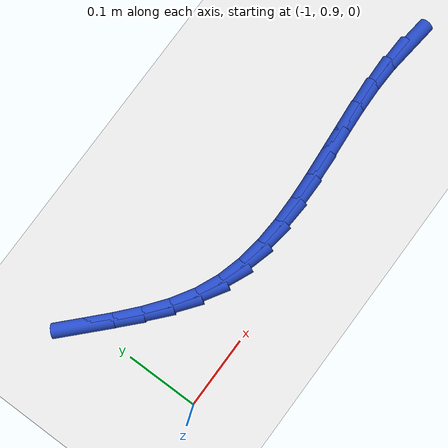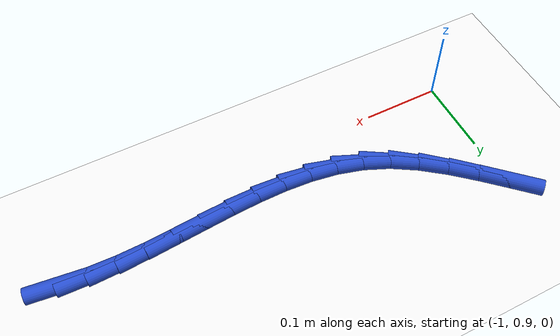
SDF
<sdf version="1.6">
 <world name="default">
  <model name="ground_plane">
   <static>1</static>
   <link name="link">
    <collision name="collision">
     <geometry><plane><normal>0 0 1</normal><size>100 100</size></plane></geometry>
     <surface><friction><ode><mu>100</mu><mu2>50</mu2></ode></friction></surface>
    </collision>
    <visual name="visual">
     <cast_shadows>0</cast_shadows>
     <geometry><plane><normal>0 0 1</normal><size>100 100</size></plane></geometry>
     <material>
      <script><uri>file://media/materials/scripts/gazebo.material</uri><name>Gazebo/WhiteGlow</name></script>
     </material>
    </visual>
   </link>
  </model>
  <model name="line">
   <link name="link_32">
    <pose>-0.4661012301306202 0.9530274893304471 0.01 0 1.57 -0.11700415218146078</pose>
    <collision name="collision">
     <geometry><cylinder><radius>0.01</radius><length>0.08</length></cylinder></geometry>
    </collision>
    <visual name="visual">
     <material>
      <script><name>Gazebo/Blue</name><uri>file://media/materials/scripts/gazebo.material</uri></script>
     </material>
     <geometry><cylinder><radius>0.01</radius><length>0.08</length></cylinder></geometry>
    </visual>
   </link>
   <link name="link_33">
    <pose>-0.4998594675953271 0.956995466998728 0.01 0 1.57 -0.031951493490827425</pose>
    <collision name="collision">
     <geometry><cylinder><radius>0.01</radius><length>0.08</length></cylinder></geometry>
    </collision>
    <visual name="visual">
     <material>
      <script><name>Gazebo/Blue</name><uri>file://media/materials/scripts/gazebo.material</uri></script>
     </material>
     <geometry><cylinder><radius>0.01</radius><length>0.08</length></cylinder></geometry>
    </visual>
   </link>
   <link name="link_34">
    <pose>-0.5345262199089968 0.9581034985976825 0.01 0 1.57 0.028199047168971918</pose>
    <collision name="collision">
     <geometry><cylinder><radius>0.01</radius><length>0.08</length></cylinder></geometry>
    </collision>
    <visual name="visual">
     <material>
      <script><name>Gazebo/Blue</name><uri>file://media/materials/scripts/gazebo.material</uri></script>
     </material>
     <geometry><cylinder><radius>0.01</radius><length>0.08</length></cylinder></geometry>
    </visual>
   </link>
   <link name="link_35">
    <pose>-0.5698891599321906 0.9571060329795994 0.01 0 1.57 0.06542180699364927</pose>
    <collision name="collision">
     <geometry><cylinder><radius>0.01</radius><length>0.08</length></cylinder></geometry>
    </collision>
    <visual name="visual">
     <material>
      <script><name>Gazebo/Blue</name><uri>file://media/materials/scripts/gazebo.material</uri></script>
     </material>
     <geometry><cylinder><radius>0.01</radius><length>0.08</length></cylinder></geometry>
    </visual>
   </link>
   <link name="link_36">
    <pose>-0.6057359605254691 0.9547575189967683 0.01 0 1.57 0.0813606788135846</pose>
    <collision name="collision">
     <geometry><cylinder><radius>0.01</radius><length>0.08</length></cylinder></geometry>
    </collision>
    <visual name="visual">
     <material>
      <script><name>Gazebo/Blue</name><uri>file://media/materials/scripts/gazebo.material</uri></script>
     </material>
     <geometry><cylinder><radius>0.01</radius><length>0.08</length></cylinder></geometry>
    </visual>
   </link>
   <link name="link_37">
    <pose>-0.6418542945493942 0.9518124055014784 0.01 0 1.57 0.07689214971873724</pose>
    <collision name="collision">
     <geometry><cylinder><radius>0.01</radius><length>0.08</length></cylinder></geometry>
    </collision>
    <visual name="visual">
     <material>
      <script><name>Gazebo/Blue</name><uri>file://media/materials/scripts/gazebo.material</uri></script>
     </material>
     <geometry><cylinder><radius>0.01</radius><length>0.08</length></cylinder></geometry>
    </visual>
   </link>
   <link name="link_38">
    <pose>-0.6780318348645269 0.9490251413460182 0.01 0 1.57 0.05200016284586164</pose>
    <collision name="collision">
     <geometry><cylinder><radius>0.01</radius><length>0.08</length></cylinder></geometry>
    </collision>
    <visual name="visual">
     <material>
      <script><name>Gazebo/Blue</name><uri>file://media/materials/scripts/gazebo.material</uri></script>
     </material>
     <geometry><cylinder><radius>0.01</radius><length>0.08</length></cylinder></geometry>
    </visual>
   </link>
   <link name="link_39">
    <pose>-0.7140562543314283 0.9471501753826779 0.01 0 1.57 0.005839107070951549</pose>
    <collision name="collision">
     <geometry><cylinder><radius>0.01</radius><length>0.08</length></cylinder></geometry>
    </collision>
    <visual name="visual">
     <material>
      <script><name>Gazebo/Blue</name><uri>file://media/materials/scripts/gazebo.material</uri></script>
     </material>
     <geometry><cylinder><radius>0.01</radius><length>0.08</length></cylinder></geometry>
    </visual>
   </link>
   <link name="link_40">
    <pose>-0.749715225810659 0.9469419564637453 0.01 0 1.57 -0.06299809701540393</pose>
    <collision name="collision">
     <geometry><cylinder><radius>0.01</radius><length>0.08</length></cylinder></geometry>
    </collision>
    <visual name="visual">
     <material>
      <script><name>Gazebo/Blue</name><uri>file://media/materials/scripts/gazebo.material</uri></script>
     </material>
     <geometry><cylinder><radius>0.01</radius><length>0.08</length></cylinder></geometry>
    </visual>
   </link>
   <link name="link_41">
    <pose>-0.7847964221627811 0.9491549334415109 0.01 0 1.57 -0.1558688055210482</pose>
    <collision name="collision">
     <geometry><cylinder><radius>0.01</radius><length>0.08</length></cylinder></geometry>
    </collision>
    <visual name="visual">
     <material>
      <script><name>Gazebo/Blue</name><uri>file://media/materials/scripts/gazebo.material</uri></script>
     </material>
     <geometry><cylinder><radius>0.01</radius><length>0.08</length></cylinder></geometry>
    </visual>
   </link>
   <link name="link_42">
    <pose>-0.8190875162483549 0.9545435551682628 0.01 0 1.57 -0.2729499034922618</pose>
    <collision name="collision">
     <geometry><cylinder><radius>0.01</radius><length>0.08</length></cylinder></geometry>
    </collision>
    <visual name="visual">
     <material>
      <script><name>Gazebo/Blue</name><uri>file://media/materials/scripts/gazebo.material</uri></script>
     </material>
     <geometry><cylinder><radius>0.01</radius><length>0.08</length></cylinder></geometry>
    </visual>
   </link>
   <link name="link_43">
    <pose>-0.852376180927942 0.9638622704962909 0.01 0 1.57 -0.41161540998264795</pose>
    <collision name="collision">
     <geometry><cylinder><radius>0.01</radius><length>0.08</length></cylinder></geometry>
    </collision>
    <visual name="visual">
     <material>
      <script><name>Gazebo/Blue</name><uri>file://media/materials/scripts/gazebo.material</uri></script>
     </material>
     <geometry><cylinder><radius>0.01</radius><length>0.08</length></cylinder></geometry>
    </visual>
   </link>
   <link name="link_44">
    <pose>-0.8844503273385146 0.9778643392958822 0.01 0 1.57 -0.5514213558929584</pose>
    <collision name="collision">
     <geometry><cylinder><radius>0.01</radius><length>0.08</length></cylinder></geometry>
    </collision>
    <visual name="visual">
     <material>
      <script><name>Gazebo/Blue</name><uri>file://media/materials/scripts/gazebo.material</uri></script>
     </material>
     <geometry><cylinder><radius>0.01</radius><length>0.08</length></cylinder></geometry>
    </visual>
   </link>
   <link name="link_45">
    <pose>-0.9152028673650509 0.996779075323483 0.01 0 1.57 -0.654606473054333</pose>
    <collision name="collision">
     <geometry><cylinder><radius>0.01</radius><length>0.08</length></cylinder></geometry>
    </collision>
    <visual name="visual">
     <material>
      <script><name>Gazebo/Blue</name><uri>file://media/materials/scripts/gazebo.material</uri></script>
     </material>
     <geometry><cylinder><radius>0.01</radius><length>0.08</length></cylinder></geometry>
    </visual>
   </link>
   <link name="link_46">
    <pose>-0.9447960531660089 1.019491803913828 0.01 0 1.57 -0.721291385311221</pose>
    <collision name="collision">
     <geometry><cylinder><radius>0.01</radius><length>0.08</length></cylinder></geometry>
    </collision>
    <visual name="visual">
     <material>
      <script><name>Gazebo/Blue</name><uri>file://media/materials/scripts/gazebo.material</uri></script>
     </material>
     <geometry><cylinder><radius>0.01</radius><length>0.08</length></cylinder></geometry>
    </visual>
   </link>
   <link name="link_47">
    <pose>-0.9734347195260533 1.0446753661866195 0.01 0 1.57 -0.7566002702176771</pose>
    <collision name="collision">
     <geometry><cylinder><radius>0.01</radius><length>0.08</length></cylinder></geometry>
    </collision>
    <visual name="visual">
     <material>
      <script><name>Gazebo/Blue</name><uri>file://media/materials/scripts/gazebo.material</uri></script>
     </material>
     <geometry><cylinder><radius>0.01</radius><length>0.08</length></cylinder></geometry>
    </visual>
   </link>
   <link name="link_48">
    <pose>-1.001323701229849 1.0710026032615596 0.01 0 1.57 -0.762959860257623</pose>
    <collision name="collision">
     <geometry><cylinder><radius>0.01</radius><length>0.08</length></cylinder></geometry>
    </collision>
    <visual name="visual">
     <material>
      <script><name>Gazebo/Blue</name><uri>file://media/materials/scripts/gazebo.material</uri></script>
     </material>
     <geometry><cylinder><radius>0.01</radius><length>0.08</length></cylinder></geometry>
    </visual>
   </link>
  </model>
 </world>
</sdf>
